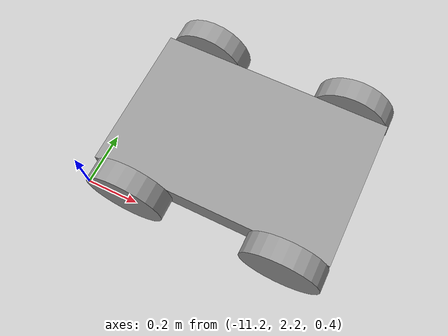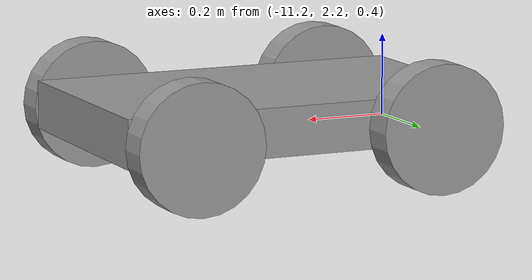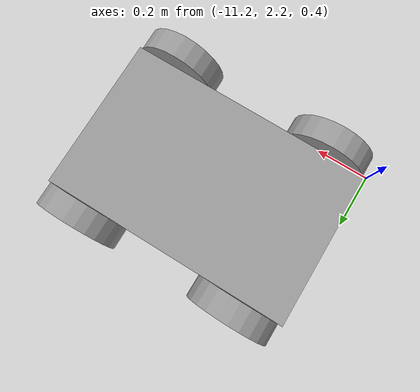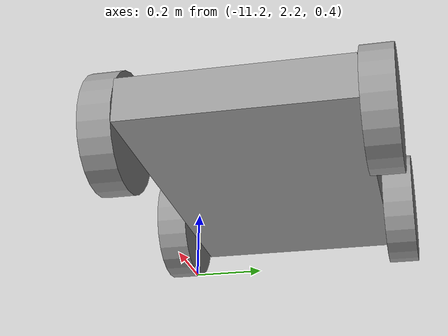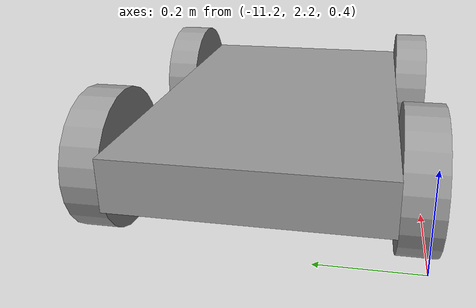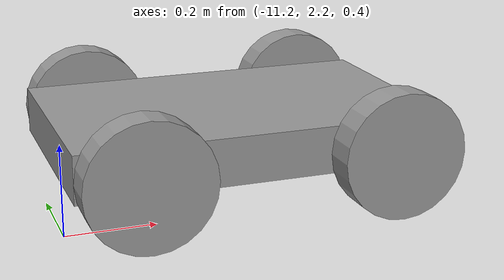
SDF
<?xml version='1.0'?>
<sdf version='1.6'>
  <model name='thuanld5_robot'>
    <link name='link_1_clone'>
      <pose frame=''>-10.4189 2.21099 0.489992 1.571 -0 0</pose>
      <inertial>
        <mass>0.00949267</mass>
        <inertia>
          <ixx>7.05e-05</ixx>
          <ixy>0</ixy>
          <ixz>0</ixz>
          <iyy>7.05e-05</iyy>
          <iyz>0</iyz>
          <izz>0.00012892</izz>
        </inertia>
        <pose frame=''>0 0 0 0 -0 0</pose>
      </inertial>
      <self_collide>0</self_collide>
      <kinematic>0</kinematic>
      <gravity>1</gravity>
      <visual name='visual'>
        <pose frame=''>0 0 0 0 -0 0</pose>
        <geometry>
          <cylinder>
            <radius>0.15</radius>
            <length>0.08</length>
          </cylinder>
        </geometry>
        <material>
          <lighting>1</lighting>
          <script>
            <uri>file://media/materials/scripts/gazebo.material</uri>
            <name>Gazebo/Grey</name>
          </script>
          <shader type='pixel'>
            <normal_map>__default__</normal_map>
          </shader>
          <ambient>0.3 0.3 0.3 1</ambient>
          <diffuse>0.7 0.7 0.7 1</diffuse>
          <specular>0.01 0.01 0.01 1</specular>
          <emissive>0 0 0 1</emissive>
        </material>
        <transparency>0</transparency>
        <cast_shadows>1</cast_shadows>
      </visual>
      <collision name='collision'>
        <laser_retro>0</laser_retro>
        <max_contacts>10</max_contacts>
        <pose frame=''>0 0 0 0 -0 0</pose>
        <geometry>
          <cylinder>
            <radius>0.15</radius>
            <length>0.08</length>
          </cylinder>
        </geometry>
        <surface>
          <friction>
            <ode>
              <mu>1</mu>
              <mu2>1</mu2>
              <fdir1>0 0 0</fdir1>
              <slip1>0</slip1>
              <slip2>0</slip2>
            </ode>
            <torsional>
              <coefficient>1</coefficient>
              <patch_radius>0</patch_radius>
              <surface_radius>0</surface_radius>
              <use_patch_radius>1</use_patch_radius>
              <ode>
                <slip>0</slip>
              </ode>
            </torsional>
          </friction>
          <bounce>
            <restitution_coefficient>0</restitution_coefficient>
            <threshold>1e+06</threshold>
          </bounce>
          <contact>
            <collide_without_contact>0</collide_without_contact>
            <collide_without_contact_bitmask>1</collide_without_contact_bitmask>
            <collide_bitmask>1</collide_bitmask>
            <ode>
              <soft_cfm>0</soft_cfm>
              <soft_erp>0.2</soft_erp>
              <kp>1e+13</kp>
              <kd>1</kd>
              <max_vel>0.01</max_vel>
              <min_depth>0</min_depth>
            </ode>
            <bullet>
              <split_impulse>1</split_impulse>
              <split_impulse_penetration_threshold>-0.01</split_impulse_penetration_threshold>
              <soft_cfm>0</soft_cfm>
              <soft_erp>0.2</soft_erp>
              <kp>1e+13</kp>
              <kd>1</kd>
            </bullet>
          </contact>
        </surface>
      </collision>
    </link>
    <link name='link_1_clone_clone'>
      <pose frame=''>-11.0093 2.84889 0.489992 1.571 -0 0</pose>
      <inertial>
        <mass>0.00949267</mass>
        <inertia>
          <ixx>7.05e-05</ixx>
          <ixy>0</ixy>
          <ixz>0</ixz>
          <iyy>7.05e-05</iyy>
          <iyz>0</iyz>
          <izz>0.00012892</izz>
        </inertia>
        <pose frame=''>0 0 0 0 -0 0</pose>
      </inertial>
      <self_collide>0</self_collide>
      <kinematic>0</kinematic>
      <gravity>1</gravity>
      <visual name='visual'>
        <pose frame=''>0 0 0 0 -0 0</pose>
        <geometry>
          <cylinder>
            <radius>0.15</radius>
            <length>0.08</length>
          </cylinder>
        </geometry>
        <material>
          <lighting>1</lighting>
          <script>
            <uri>file://media/materials/scripts/gazebo.material</uri>
            <name>Gazebo/Grey</name>
          </script>
          <shader type='pixel'>
            <normal_map>__default__</normal_map>
          </shader>
          <ambient>0.3 0.3 0.3 1</ambient>
          <diffuse>0.7 0.7 0.7 1</diffuse>
          <specular>0.01 0.01 0.01 1</specular>
          <emissive>0 0 0 1</emissive>
        </material>
        <transparency>0</transparency>
        <cast_shadows>1</cast_shadows>
      </visual>
      <collision name='collision'>
        <laser_retro>0</laser_retro>
        <max_contacts>10</max_contacts>
        <pose frame=''>0 0 0 0 -0 0</pose>
        <geometry>
          <cylinder>
            <radius>0.15</radius>
            <length>0.08</length>
          </cylinder>
        </geometry>
        <surface>
          <friction>
            <ode>
              <mu>1</mu>
              <mu2>1</mu2>
              <fdir1>0 0 0</fdir1>
              <slip1>0</slip1>
              <slip2>0</slip2>
            </ode>
            <torsional>
              <coefficient>1</coefficient>
              <patch_radius>0</patch_radius>
              <surface_radius>0</surface_radius>
              <use_patch_radius>1</use_patch_radius>
              <ode>
                <slip>0</slip>
              </ode>
            </torsional>
          </friction>
          <bounce>
            <restitution_coefficient>0</restitution_coefficient>
            <threshold>1e+06</threshold>
          </bounce>
          <contact>
            <collide_without_contact>0</collide_without_contact>
            <collide_without_contact_bitmask>1</collide_without_contact_bitmask>
            <collide_bitmask>1</collide_bitmask>
            <ode>
              <soft_cfm>0</soft_cfm>
              <soft_erp>0.2</soft_erp>
              <kp>1e+13</kp>
              <kd>1</kd>
              <max_vel>0.01</max_vel>
              <min_depth>0</min_depth>
            </ode>
            <bullet>
              <split_impulse>1</split_impulse>
              <split_impulse_penetration_threshold>-0.01</split_impulse_penetration_threshold>
              <soft_cfm>0</soft_cfm>
              <soft_erp>0.2</soft_erp>
              <kp>1e+13</kp>
              <kd>1</kd>
            </bullet>
          </contact>
        </surface>
      </collision>
    </link>
    <link name='link_1_clone_clone_0'>
      <pose frame=''>-11.0158 2.21136 0.489992 1.571 -0 0</pose>
      <inertial>
        <mass>0.00949267</mass>
        <inertia>
          <ixx>7.05e-05</ixx>
          <ixy>0</ixy>
          <ixz>0</ixz>
          <iyy>7.05e-05</iyy>
          <iyz>0</iyz>
          <izz>0.00012892</izz>
        </inertia>
        <pose frame=''>0 0 0 0 -0 0</pose>
      </inertial>
      <self_collide>0</self_collide>
      <kinematic>0</kinematic>
      <visual name='visual'>
        <pose frame=''>0 0 0 0 -0 0</pose>
        <geometry>
          <cylinder>
            <radius>0.15</radius>
            <length>0.08</length>
          </cylinder>
        </geometry>
        <material>
          <lighting>1</lighting>
          <script>
            <uri>file://media/materials/scripts/gazebo.material</uri>
            <name>Gazebo/Grey</name>
          </script>
          <shader type='pixel'>
            <normal_map>__default__</normal_map>
          </shader>
          <ambient>0.3 0.3 0.3 1</ambient>
          <diffuse>0.7 0.7 0.7 1</diffuse>
          <specular>0.01 0.01 0.01 1</specular>
          <emissive>0 0 0 1</emissive>
        </material>
        <transparency>0</transparency>
        <cast_shadows>1</cast_shadows>
      </visual>
      <collision name='collision'>
        <laser_retro>0</laser_retro>
        <max_contacts>10</max_contacts>
        <pose frame=''>0 0 0 0 -0 0</pose>
        <geometry>
          <cylinder>
            <radius>0.15</radius>
            <length>0.08</length>
          </cylinder>
        </geometry>
        <surface>
          <friction>
            <ode>
              <mu>1</mu>
              <mu2>1</mu2>
              <fdir1>0 0 0</fdir1>
              <slip1>0</slip1>
              <slip2>0</slip2>
            </ode>
            <torsional>
              <coefficient>1</coefficient>
              <patch_radius>0</patch_radius>
              <surface_radius>0</surface_radius>
              <use_patch_radius>1</use_patch_radius>
              <ode>
                <slip>0</slip>
              </ode>
            </torsional>
          </friction>
          <bounce>
            <restitution_coefficient>0</restitution_coefficient>
            <threshold>1e+06</threshold>
          </bounce>
          <contact>
            <collide_without_contact>0</collide_without_contact>
            <collide_without_contact_bitmask>1</collide_without_contact_bitmask>
            <collide_bitmask>1</collide_bitmask>
            <ode>
              <soft_cfm>0</soft_cfm>
              <soft_erp>0.2</soft_erp>
              <kp>1e+13</kp>
              <kd>1</kd>
              <max_vel>0.01</max_vel>
              <min_depth>0</min_depth>
            </ode>
            <bullet>
              <split_impulse>1</split_impulse>
              <split_impulse_penetration_threshold>-0.01</split_impulse_penetration_threshold>
              <soft_cfm>0</soft_cfm>
              <soft_erp>0.2</soft_erp>
              <kp>1e+13</kp>
              <kd>1</kd>
            </bullet>
          </contact>
        </surface>
      </collision>
    </link>
    <link name='link_1_clone_clone_clone'>
      <pose frame=''>-10.4189 2.84889 0.489992 1.571 -0 0</pose>
      <inertial>
        <mass>0.00949267</mass>
        <inertia>
          <ixx>7.05e-05</ixx>
          <ixy>0</ixy>
          <ixz>0</ixz>
          <iyy>7.05e-05</iyy>
          <iyz>0</iyz>
          <izz>0.00012892</izz>
        </inertia>
        <pose frame=''>0 0 0 0 -0 0</pose>
      </inertial>
      <self_collide>0</self_collide>
      <kinematic>0</kinematic>
      <visual name='visual'>
        <pose frame=''>0 0 0 0 -0 0</pose>
        <geometry>
          <cylinder>
            <radius>0.15</radius>
            <length>0.08</length>
          </cylinder>
        </geometry>
        <material>
          <lighting>1</lighting>
          <script>
            <uri>file://media/materials/scripts/gazebo.material</uri>
            <name>Gazebo/Grey</name>
          </script>
          <shader type='pixel'>
            <normal_map>__default__</normal_map>
          </shader>
          <ambient>0.3 0.3 0.3 1</ambient>
          <diffuse>0.7 0.7 0.7 1</diffuse>
          <specular>0.01 0.01 0.01 1</specular>
          <emissive>0 0 0 1</emissive>
        </material>
        <transparency>0</transparency>
        <cast_shadows>1</cast_shadows>
      </visual>
      <collision name='collision'>
        <laser_retro>0</laser_retro>
        <max_contacts>10</max_contacts>
        <pose frame=''>0 0 0 0 -0 0</pose>
        <geometry>
          <cylinder>
            <radius>0.15</radius>
            <length>0.08</length>
          </cylinder>
        </geometry>
        <surface>
          <friction>
            <ode>
              <mu>1</mu>
              <mu2>1</mu2>
              <fdir1>0 0 0</fdir1>
              <slip1>0</slip1>
              <slip2>0</slip2>
            </ode>
            <torsional>
              <coefficient>1</coefficient>
              <patch_radius>0</patch_radius>
              <surface_radius>0</surface_radius>
              <use_patch_radius>1</use_patch_radius>
              <ode>
                <slip>0</slip>
              </ode>
            </torsional>
          </friction>
          <bounce>
            <restitution_coefficient>0</restitution_coefficient>
            <threshold>1e+06</threshold>
          </bounce>
          <contact>
            <collide_without_contact>0</collide_without_contact>
            <collide_without_contact_bitmask>1</collide_without_contact_bitmask>
            <collide_bitmask>1</collide_bitmask>
            <ode>
              <soft_cfm>0</soft_cfm>
              <soft_erp>0.2</soft_erp>
              <kp>1e+13</kp>
              <kd>1</kd>
              <max_vel>0.01</max_vel>
              <min_depth>0</min_depth>
            </ode>
            <bullet>
              <split_impulse>1</split_impulse>
              <split_impulse_penetration_threshold>-0.01</split_impulse_penetration_threshold>
              <soft_cfm>0</soft_cfm>
              <soft_erp>0.2</soft_erp>
              <kp>1e+13</kp>
              <kd>1</kd>
            </bullet>
          </contact>
        </surface>
      </collision>
    </link>
    <link name='link_2'>
      <pose frame=''>-10.7206 2.53032 0.5 0 -0 0</pose>
      <inertial>
        <mass>0.0560474</mass>
        <inertia>
          <ixx>0.00151291</ixx>
          <ixy>0</ixy>
          <ixz>0</ixz>
          <iyy>0.00376261</iyy>
          <iyz>0</iyz>
          <izz>0.0051566</izz>
        </inertia>
        <pose frame=''>0 0 0 0 -0 0</pose>
      </inertial>
      <visual name='visual'>
        <pose frame=''>0 0 0 0 -0 0</pose>
        <geometry>
          <box>
            <size>0.890428 0.557844 0.112828</size>
          </box>
        </geometry>
        <material>
          <lighting>1</lighting>
          <script>
            <uri>file://media/materials/scripts/gazebo.material</uri>
            <name>Gazebo/Grey</name>
          </script>
          <shader type='pixel'/>
          <ambient>0.3 0.3 0.3 1</ambient>
          <diffuse>0.7 0.7 0.7 1</diffuse>
          <specular>0.01 0.01 0.01 1</specular>
          <emissive>0 0 0 1</emissive>
        </material>
        <transparency>0</transparency>
        <cast_shadows>1</cast_shadows>
      </visual>
      <collision name='collision'>
        <laser_retro>0</laser_retro>
        <max_contacts>10</max_contacts>
        <pose frame=''>0 0 0 0 -0 0</pose>
        <geometry>
          <box>
            <size>0.890428 0.557844 0.112828</size>
          </box>
        </geometry>
        <surface>
          <friction>
            <ode>
              <mu>1</mu>
              <mu2>1</mu2>
              <fdir1>0 0 0</fdir1>
              <slip1>0</slip1>
              <slip2>0</slip2>
            </ode>
            <torsional>
              <coefficient>1</coefficient>
              <patch_radius>0</patch_radius>
              <surface_radius>0</surface_radius>
              <use_patch_radius>1</use_patch_radius>
              <ode>
                <slip>0</slip>
              </ode>
            </torsional>
          </friction>
          <bounce>
            <restitution_coefficient>0</restitution_coefficient>
            <threshold>1e+06</threshold>
          </bounce>
          <contact>
            <collide_without_contact>0</collide_without_contact>
            <collide_without_contact_bitmask>1</collide_without_contact_bitmask>
            <collide_bitmask>1</collide_bitmask>
            <ode>
              <soft_cfm>0</soft_cfm>
              <soft_erp>0.2</soft_erp>
              <kp>1e+13</kp>
              <kd>1</kd>
              <max_vel>0.01</max_vel>
              <min_depth>0</min_depth>
            </ode>
            <bullet>
              <split_impulse>1</split_impulse>
              <split_impulse_penetration_threshold>-0.01</split_impulse_penetration_threshold>
              <soft_cfm>0</soft_cfm>
              <soft_erp>0.2</soft_erp>
              <kp>1e+13</kp>
              <kd>1</kd>
            </bullet>
          </contact>
        </surface>
      </collision>
    </link>
    <joint name='link_2_JOINT_1' type='revolute'>
      <parent>link_2</parent>
      <child>link_1_clone</child>
      <pose frame=''>0 0 0 0 -0 0</pose>
      <axis>
        <xyz>0 0 1</xyz>
        <use_parent_model_frame>0</use_parent_model_frame>
        <limit>
          <lower>-1.79769e+308</lower>
          <upper>1.79769e+308</upper>
          <effort>-1</effort>
          <velocity>-1</velocity>
        </limit>
        <dynamics>
          <spring_reference>0</spring_reference>
          <spring_stiffness>0</spring_stiffness>
          <damping>0</damping>
        </dynamics>
      </axis>
      <physics>
        <ode>
          <limit>
            <cfm>0</cfm>
            <erp>0.2</erp>
          </limit>
          <suspension>
            <cfm>0</cfm>
            <erp>0.2</erp>
          </suspension>
        </ode>
      </physics>
    </joint>
    <joint name='link_2_JOINT_2' type='revolute'>
      <parent>link_2</parent>
      <child>link_1_clone_clone</child>
      <pose frame=''>0 0 0 0 -0 0</pose>
      <axis>
        <xyz>0 0 1</xyz>
        <use_parent_model_frame>0</use_parent_model_frame>
        <limit>
          <lower>-1.79769e+308</lower>
          <upper>1.79769e+308</upper>
          <effort>-1</effort>
          <velocity>-1</velocity>
        </limit>
        <dynamics>
          <spring_reference>0</spring_reference>
          <spring_stiffness>0</spring_stiffness>
          <damping>0</damping>
        </dynamics>
      </axis>
      <physics>
        <ode>
          <limit>
            <cfm>0</cfm>
            <erp>0.2</erp>
          </limit>
          <suspension>
            <cfm>0</cfm>
            <erp>0.2</erp>
          </suspension>
        </ode>
      </physics>
    </joint>
    <joint name='link_2_JOINT_3' type='revolute'>
      <parent>link_2</parent>
      <child>link_1_clone_clone_clone</child>
      <pose frame=''>0 0 0 0 -0 0</pose>
      <axis>
        <xyz>0 0 1</xyz>
        <use_parent_model_frame>0</use_parent_model_frame>
        <limit>
          <lower>-1.79769e+308</lower>
          <upper>1.79769e+308</upper>
          <effort>-1</effort>
          <velocity>-1</velocity>
        </limit>
        <dynamics>
          <spring_reference>0</spring_reference>
          <spring_stiffness>0</spring_stiffness>
          <damping>0</damping>
        </dynamics>
      </axis>
      <physics>
        <ode>
          <limit>
            <cfm>0</cfm>
            <erp>0.2</erp>
          </limit>
          <suspension>
            <cfm>0</cfm>
            <erp>0.2</erp>
          </suspension>
        </ode>
      </physics>
    </joint>
    <joint name='link_2_JOINT_5' type='revolute'>
      <parent>link_2</parent>
      <child>link_1_clone_clone_0</child>
      <pose frame=''>0 0 0 0 -0 0</pose>
      <axis>
        <xyz>0 0 1</xyz>
        <use_parent_model_frame>0</use_parent_model_frame>
        <limit>
          <lower>-1.79769e+308</lower>
          <upper>1.79769e+308</upper>
          <effort>-1</effort>
          <velocity>-1</velocity>
        </limit>
        <dynamics>
          <spring_reference>0</spring_reference>
          <spring_stiffness>0</spring_stiffness>
          <damping>0</damping>
        </dynamics>
      </axis>
      <physics>
        <ode>
          <limit>
            <cfm>0</cfm>
            <erp>0.2</erp>
          </limit>
          <suspension>
            <cfm>0</cfm>
            <erp>0.2</erp>
          </suspension>
        </ode>
      </physics>
    </joint>
    <static>0</static>
    <allow_auto_disable>1</allow_auto_disable>
  </model>
</sdf>
